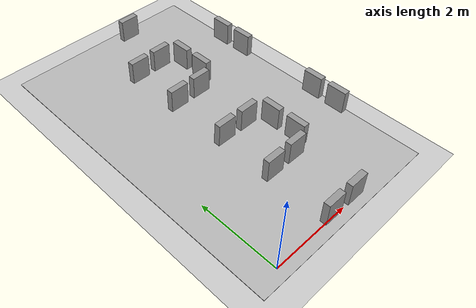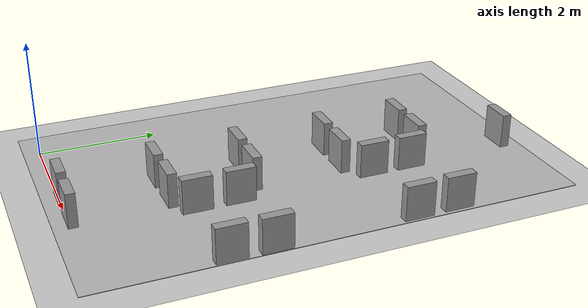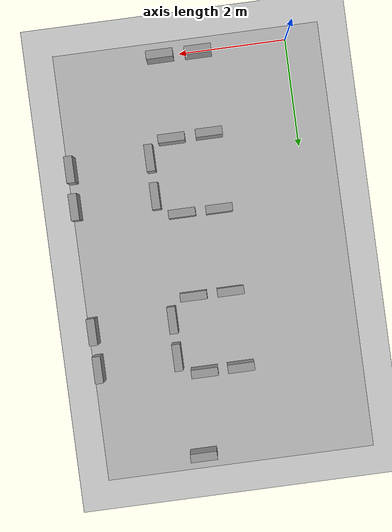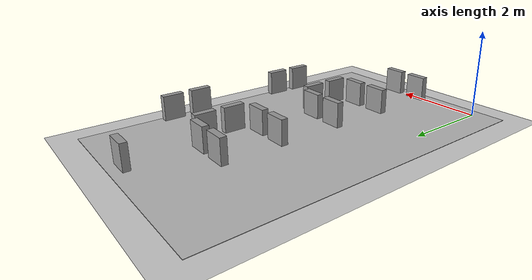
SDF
<sdf version="1.6">
 <world name="default">
  <model name="ground_plane">
   <static>1</static>
   <link name="link">
    <collision name="collision">
     <geometry><plane><normal>0 0 1</normal><size>100 100</size></plane></geometry>
     <surface>
      <contact><collide_bitmask>65535</collide_bitmask></contact>
      <friction><ode><mu>100</mu><mu2>50</mu2></ode></friction>
     </surface>
    </collision>
    <visual name="visual">
     <cast_shadows>0</cast_shadows>
     <geometry><plane><normal>0 0 1</normal><size>100 100</size></plane></geometry>
     <material>
      <script><uri>file://media/materials/scripts/gazebo.material</uri><name>Gazebo/Grey</name></script>
     </material>
    </visual>
   </link>
  </model>
  <gravity>0 0 -9.8</gravity>
  <magnetic_field>6e-06 2.3e-05 -4.2e-05</magnetic_field>
  <atmosphere type="adiabatic"/>
  <physics name="default_physics" default="0" type="ode">
   <max_step_size>0.001</max_step_size>
   <real_time_factor>1</real_time_factor>
   <real_time_update_rate>1000</real_time_update_rate>
  </physics>
  <scene><ambient>0.4 0.4 0.4 1</ambient><background>0.7 0.7 0.7 1</background><shadows>1</shadows></scene>
  <audio><device>default</device></audio>
  <spherical_coordinates>
   <surface_model>EARTH_WGS84</surface_model>
   <latitude_deg>0</latitude_deg>
   <longitude_deg>0</longitude_deg>
   <elevation>0</elevation>
   <heading_deg>0</heading_deg>
  </spherical_coordinates>
  <model name="aruco_map">
   <pose>1.85573 3.73645 0.001926 0 0 -1.5708</pose>
   <static>1</static>
   <link name="link">
    <visual name="visual"><geometry><mesh><uri>model://map/meshes/map.dae</uri></mesh></geometry></visual>
   </link>
  </model>
  <light name="user_point_light_0" type="point">
   <pose>1.25154 3.40382 1 0 -0 0</pose>
   <diffuse>1 1 1 1</diffuse>
   <specular>0.0901961 0.0901961 0.0901961 1</specular>
   <direction>0 0 -1</direction>
   <attenuation>
    <range>15</range>
    <constant>0.2</constant>
    <linear>0.01</linear>
    <quadratic>0.001</quadratic>
   </attenuation>
   <cast_shadows>0</cast_shadows>
   <direction>0 0 -1</direction>
  </light>
  <light name="user_directional_light_0" type="directional">
   <pose>0.38139 4.93156 1 0 -0 0</pose>
   <diffuse>0.5 0.5 0.5 1</diffuse>
   <specular>0.1 0.1 0.1 1</specular>
   <direction>0.1 0.1 -0.9</direction>
   <attenuation>
    <range>20</range>
    <constant>0.5</constant>
    <linear>0.01</linear>
    <quadratic>0.001</quadratic>
   </attenuation>
  </light>
  <light name="user_directional_light_1" type="directional">
   <pose>-2.51983 7.48431 1 0 -0 0</pose>
   <diffuse>0.5 0.5 0.5 1</diffuse>
   <specular>0.1 0.1 0.1 1</specular>
   <direction>0.1 0.1 -0.9</direction>
   <attenuation>
    <range>20</range>
    <constant>0.5</constant>
    <linear>0.01</linear>
    <quadratic>0.001</quadratic>
   </attenuation>
  </light>
  <light name="user_point_light_0_clone" type="point">
   <pose>2.29011 0.449297 4 0 -0 0</pose>
   <diffuse>1 1 1 1</diffuse>
   <specular>0.0901961 0.0901961 0.0901961 1</specular>
   <direction>0 0 -1</direction>
   <attenuation>
    <range>15</range>
    <constant>0.2</constant>
    <linear>0.01</linear>
    <quadratic>0.001</quadratic>
   </attenuation>
   <cast_shadows>0</cast_shadows>
  </light>
  <model name="unit_box">
   <pose>2.3397 1.58245 0.295638 1e-06 -2e-06 -7.2e-05</pose>
   <link name="link">
    <inertial>
     <mass>1</mass>
     <inertia>
      <ixx>0.166667</ixx>
      <ixy>0</ixy>
      <ixz>0</ixz>
      <iyy>0.166667</iyy>
      <iyz>0</iyz>
      <izz>0.166667</izz>
     </inertia>
    </inertial>
    <collision name="collision">
     <geometry><box><size>0.493954 0.155321 0.591273</size></box></geometry>
    </collision>
    <visual name="visual">
     <geometry><box><size>0.493954 0.155321 0.591273</size></box></geometry>
     <material>
      <script><name>Gazebo/Grey</name><uri>file://media/materials/scripts/gazebo.material</uri></script>
     </material>
    </visual>
   </link>
  </model>
  <model name="unit_box_clone">
   <pose>1.64474 1.56881 0.295638 2e-06 -2e-06 8.7e-05</pose>
   <link name="link">
    <inertial>
     <mass>1</mass>
     <inertia>
      <ixx>0.166667</ixx>
      <ixy>0</ixy>
      <ixz>0</ixz>
      <iyy>0.166667</iyy>
      <iyz>0</iyz>
      <izz>0.166667</izz>
     </inertia>
    </inertial>
    <collision name="collision">
     <geometry><box><size>0.493954 0.155321 0.591274</size></box></geometry>
    </collision>
    <visual name="visual">
     <geometry><box><size>0.493954 0.155321 0.591274</size></box></geometry>
     <material>
      <script><name>Gazebo/Grey</name><uri>file://media/materials/scripts/gazebo.material</uri></script>
     </material>
    </visual>
   </link>
  </model>
  <model name="unit_box_clone_0">
   <pose>2.35529 0.03884 0.295635 3e-06 7e-06 0.000193</pose>
   <link name="link">
    <inertial>
     <mass>1</mass>
     <inertia>
      <ixx>0.166667</ixx>
      <ixy>0</ixy>
      <ixz>0</ixz>
      <iyy>0.166667</iyy>
      <iyz>0</iyz>
      <izz>0.166667</izz>
     </inertia>
    </inertial>
    <collision name="collision">
     <geometry><box><size>0.493954 0.155321 0.591274</size></box></geometry>
    </collision>
    <visual name="visual">
     <geometry><box><size>0.493954 0.155321 0.591274</size></box></geometry>
     <material>
      <script><name>Gazebo/Grey</name><uri>file://media/materials/scripts/gazebo.material</uri></script>
     </material>
    </visual>
   </link>
  </model>
  <model name="unit_box_clone_1">
   <pose>1.64973 0.044182 0.295635 -3e-06 -7e-06 -0.000341</pose>
   <link name="link">
    <inertial>
     <mass>1</mass>
     <inertia>
      <ixx>0.166667</ixx>
      <ixy>0</ixy>
      <ixz>0</ixz>
      <iyy>0.166667</iyy>
      <iyz>0</iyz>
      <izz>0.166667</izz>
     </inertia>
    </inertial>
    <collision name="collision">
     <geometry><box><size>0.493954 0.155321 0.591274</size></box></geometry>
    </collision>
    <visual name="visual">
     <geometry><box><size>0.493954 0.155321 0.591274</size></box></geometry>
     <material>
      <script><name>Gazebo/Grey</name><uri>file://media/materials/scripts/gazebo.material</uri></script>
     </material>
    </visual>
   </link>
  </model>
  <model name="unit_box_clone_2">
   <pose>2.32764 2.97085 0.295635 -2e-06 7e-06 0.000188</pose>
   <link name="link">
    <inertial>
     <mass>1</mass>
     <inertia>
      <ixx>0.166667</ixx>
      <ixy>0</ixy>
      <ixz>0</ixz>
      <iyy>0.166667</iyy>
      <iyz>0</iyz>
      <izz>0.166667</izz>
     </inertia>
    </inertial>
    <collision name="collision">
     <geometry><box><size>0.493954 0.155321 0.591274</size></box></geometry>
    </collision>
    <visual name="visual">
     <geometry><box><size>0.493954 0.155321 0.591274</size></box></geometry>
     <material>
      <script><name>Gazebo/Grey</name><uri>file://media/materials/scripts/gazebo.material</uri></script>
     </material>
    </visual>
   </link>
  </model>
  <model name="unit_box_clone_3">
   <pose>1.64222 2.97773 0.295638 0 -2e-06 -0.000282</pose>
   <link name="link">
    <inertial>
     <mass>1</mass>
     <inertia>
      <ixx>0.166667</ixx>
      <ixy>0</ixy>
      <ixz>0</ixz>
      <iyy>0.166667</iyy>
      <iyz>0</iyz>
      <izz>0.166667</izz>
     </inertia>
    </inertial>
    <collision name="collision">
     <geometry><box><size>0.493954 0.155321 0.591274</size></box></geometry>
    </collision>
    <visual name="visual">
     <geometry><box><size>0.493954 0.155321 0.591274</size></box></geometry>
     <material>
      <script><name>Gazebo/Grey</name><uri>file://media/materials/scripts/gazebo.material</uri></script>
     </material>
    </visual>
   </link>
  </model>
  <model name="unit_box_clone_4">
   <pose>2.31734 4.50838 0.295638 -0 2e-06 -0.000314</pose>
   <link name="link">
    <inertial>
     <mass>1</mass>
     <inertia>
      <ixx>0.166667</ixx>
      <ixy>0</ixy>
      <ixz>0</ixz>
      <iyy>0.166667</iyy>
      <iyz>0</iyz>
      <izz>0.166667</izz>
     </inertia>
    </inertial>
    <collision name="collision">
     <geometry><box><size>0.493954 0.155321 0.591274</size></box></geometry>
    </collision>
    <visual name="visual">
     <geometry><box><size>0.493954 0.155321 0.591274</size></box></geometry>
     <material>
      <script><name>Gazebo/Grey</name><uri>file://media/materials/scripts/gazebo.material</uri></script>
     </material>
    </visual>
   </link>
  </model>
  <model name="unit_box_clone_5">
   <pose>1.63226 4.50813 0.295635 -2e-06 -7e-06 0.000354</pose>
   <link name="link">
    <inertial>
     <mass>1</mass>
     <inertia>
      <ixx>0.166667</ixx>
      <ixy>0</ixy>
      <ixz>0</ixz>
      <iyy>0.166667</iyy>
      <iyz>0</iyz>
      <izz>0.166667</izz>
     </inertia>
    </inertial>
    <collision name="collision">
     <geometry><box><size>0.493954 0.155321 0.591274</size></box></geometry>
    </collision>
    <visual name="visual">
     <geometry><box><size>0.493954 0.155321 0.591274</size></box></geometry>
     <material>
      <script><name>Gazebo/Grey</name><uri>file://media/materials/scripts/gazebo.material</uri></script>
     </material>
    </visual>
   </link>
  </model>
  <model name="unit_box_clone_6">
   <pose>1.62494 5.91459 0.295638 0 -2e-06 -4.7e-05</pose>
   <link name="link">
    <inertial>
     <mass>1</mass>
     <inertia>
      <ixx>0.166667</ixx>
      <ixy>0</ixy>
      <ixz>0</ixz>
      <iyy>0.166667</iyy>
      <iyz>0</iyz>
      <izz>0.166667</izz>
     </inertia>
    </inertial>
    <collision name="collision">
     <geometry><box><size>0.493954 0.155321 0.591274</size></box></geometry>
    </collision>
    <visual name="visual">
     <geometry><box><size>0.493954 0.155321 0.591274</size></box></geometry>
     <material>
      <script><name>Gazebo/Grey</name><uri>file://media/materials/scripts/gazebo.material</uri></script>
     </material>
    </visual>
   </link>
  </model>
  <model name="unit_box_clone_7">
   <pose>2.29843 5.92086 0.295635 1e-06 -7e-06 -0.000285</pose>
   <link name="link">
    <inertial>
     <mass>1</mass>
     <inertia>
      <ixx>0.166667</ixx>
      <ixy>0</ixy>
      <ixz>0</ixz>
      <iyy>0.166667</iyy>
      <iyz>0</iyz>
      <izz>0.166667</izz>
     </inertia>
    </inertial>
    <collision name="collision">
     <geometry><box><size>0.493954 0.155321 0.591274</size></box></geometry>
    </collision>
    <visual name="visual">
     <geometry><box><size>0.493954 0.155321 0.591274</size></box></geometry>
     <material>
      <script><name>Gazebo/Grey</name><uri>file://media/materials/scripts/gazebo.material</uri></script>
     </material>
    </visual>
   </link>
  </model>
  <model name="unit_box_clone_8">
   <pose>2.51446 7.43862 0.295635 -3e-06 -7e-06 -0.00017</pose>
   <link name="link">
    <inertial>
     <mass>1</mass>
     <inertia>
      <ixx>0.166667</ixx>
      <ixy>0</ixy>
      <ixz>0</ixz>
      <iyy>0.166667</iyy>
      <iyz>0</iyz>
      <izz>0.166667</izz>
     </inertia>
    </inertial>
    <collision name="collision">
     <geometry><box><size>0.493954 0.155321 0.591274</size></box></geometry>
    </collision>
    <visual name="visual">
     <geometry><box><size>0.493954 0.155321 0.591274</size></box></geometry>
     <material>
      <script><name>Gazebo/Grey</name><uri>file://media/materials/scripts/gazebo.material</uri></script>
     </material>
    </visual>
   </link>
  </model>
  <model name="unit_box_clone_9">
   <pose>4.22714 5.61561 0.295635 -3e-06 -7e-06 1.57067</pose>
   <link name="link">
    <inertial>
     <mass>1</mass>
     <inertia>
      <ixx>0.166667</ixx>
      <ixy>0</ixy>
      <ixz>0</ixz>
      <iyy>0.166667</iyy>
      <iyz>0</iyz>
      <izz>0.166667</izz>
     </inertia>
    </inertial>
    <collision name="collision">
     <geometry><box><size>0.493954 0.155321 0.591274</size></box></geometry>
    </collision>
    <visual name="visual">
     <geometry><box><size>0.493954 0.155321 0.591274</size></box></geometry>
     <material>
      <script><name>Gazebo/Grey</name><uri>file://media/materials/scripts/gazebo.material</uri></script>
     </material>
    </visual>
   </link>
  </model>
  <model name="unit_box_clone_9_clone">
   <pose>4.24206 4.9161 0.295638 0 -2e-06 1.57067</pose>
   <link name="link">
    <inertial>
     <mass>1</mass>
     <inertia>
      <ixx>0.166667</ixx>
      <ixy>0</ixy>
      <ixz>0</ixz>
      <iyy>0.166667</iyy>
      <iyz>0</iyz>
      <izz>0.166667</izz>
     </inertia>
    </inertial>
    <collision name="collision">
     <geometry><box><size>0.493954 0.155321 0.591274</size></box></geometry>
    </collision>
    <visual name="visual">
     <geometry><box><size>0.493954 0.155321 0.591274</size></box></geometry>
     <material>
      <script><name>Gazebo/Grey</name><uri>file://media/materials/scripts/gazebo.material</uri></script>
     </material>
    </visual>
   </link>
  </model>
  <model name="unit_box_clone_9_clone_0">
   <pose>4.26795 2.60869 0.295638 0 -2e-06 1.57075</pose>
   <link name="link">
    <inertial>
     <mass>1</mass>
     <inertia>
      <ixx>0.166667</ixx>
      <ixy>0</ixy>
      <ixz>0</ixz>
      <iyy>0.166667</iyy>
      <iyz>0</iyz>
      <izz>0.166667</izz>
     </inertia>
    </inertial>
    <collision name="collision">
     <geometry><box><size>0.493954 0.155321 0.591274</size></box></geometry>
    </collision>
    <visual name="visual">
     <geometry><box><size>0.493954 0.155321 0.591274</size></box></geometry>
     <material>
      <script><name>Gazebo/Grey</name><uri>file://media/materials/scripts/gazebo.material</uri></script>
     </material>
    </visual>
   </link>
  </model>
  <model name="unit_box_clone_9_clone_1">
   <pose>4.25746 1.91871 0.295635 -3e-06 -7e-06 1.57073</pose>
   <link name="link">
    <inertial>
     <mass>1</mass>
     <inertia>
      <ixx>0.166667</ixx>
      <ixy>0</ixy>
      <ixz>0</ixz>
      <iyy>0.166667</iyy>
      <iyz>0</iyz>
      <izz>0.166667</izz>
     </inertia>
    </inertial>
    <collision name="collision">
     <geometry><box><size>0.493954 0.155321 0.591274</size></box></geometry>
    </collision>
    <visual name="visual">
     <geometry><box><size>0.493954 0.155321 0.591274</size></box></geometry>
     <material>
      <script><name>Gazebo/Grey</name><uri>file://media/materials/scripts/gazebo.material</uri></script>
     </material>
    </visual>
   </link>
  </model>
  <model name="unit_box_clone_9_clone_2">
   <pose>2.75692 5.58326 0.295638 3e-06 2e-06 1.57069</pose>
   <link name="link">
    <inertial>
     <mass>1</mass>
     <inertia>
      <ixx>0.166667</ixx>
      <ixy>0</ixy>
      <ixz>0</ixz>
      <iyy>0.166667</iyy>
      <iyz>0</iyz>
      <izz>0.166667</izz>
     </inertia>
    </inertial>
    <collision name="collision">
     <geometry><box><size>0.493954 0.155321 0.591274</size></box></geometry>
    </collision>
    <visual name="visual">
     <geometry><box><size>0.493954 0.155321 0.591274</size></box></geometry>
     <material>
      <script><name>Gazebo/Grey</name><uri>file://media/materials/scripts/gazebo.material</uri></script>
     </material>
    </visual>
   </link>
  </model>
  <model name="unit_box_clone_9_clone_3">
   <pose>2.75669 4.89501 0.295635 -3e-06 -7e-06 1.57067</pose>
   <link name="link">
    <inertial>
     <mass>1</mass>
     <inertia>
      <ixx>0.166667</ixx>
      <ixy>0</ixy>
      <ixz>0</ixz>
      <iyy>0.166667</iyy>
      <iyz>0</iyz>
      <izz>0.166667</izz>
     </inertia>
    </inertial>
    <collision name="collision">
     <geometry><box><size>0.493954 0.155321 0.591274</size></box></geometry>
    </collision>
    <visual name="visual">
     <geometry><box><size>0.493954 0.155321 0.591274</size></box></geometry>
     <material>
      <script><name>Gazebo/Grey</name><uri>file://media/materials/scripts/gazebo.material</uri></script>
     </material>
    </visual>
   </link>
  </model>
  <model name="unit_box_clone_9_clone_4">
   <pose>2.77479 2.60045 0.295638 -0 3e-06 1.57065</pose>
   <link name="link">
    <inertial>
     <mass>1</mass>
     <inertia>
      <ixx>0.166667</ixx>
      <ixy>0</ixy>
      <ixz>0</ixz>
      <iyy>0.166667</iyy>
      <iyz>0</iyz>
      <izz>0.166667</izz>
     </inertia>
    </inertial>
    <collision name="collision">
     <geometry><box><size>0.493954 0.155321 0.591274</size></box></geometry>
    </collision>
    <visual name="visual">
     <geometry><box><size>0.493954 0.155321 0.591274</size></box></geometry>
     <material>
      <script><name>Gazebo/Grey</name><uri>file://media/materials/scripts/gazebo.material</uri></script>
     </material>
    </visual>
   </link>
  </model>
  <model name="unit_box_clone_9_clone_5">
   <pose>2.78068 1.89712 0.295635 2e-06 -7e-06 1.57067</pose>
   <link name="link">
    <inertial>
     <mass>1</mass>
     <inertia>
      <ixx>0.166667</ixx>
      <ixy>0</ixy>
      <ixz>0</ixz>
      <iyy>0.166667</iyy>
      <iyz>0</iyz>
      <izz>0.166667</izz>
     </inertia>
    </inertial>
    <collision name="collision">
     <geometry><box><size>0.493954 0.155321 0.591274</size></box></geometry>
    </collision>
    <visual name="visual">
     <geometry><box><size>0.493954 0.155321 0.591274</size></box></geometry>
     <material>
      <script><name>Gazebo/Grey</name><uri>file://media/materials/scripts/gazebo.material</uri></script>
     </material>
    </visual>
   </link>
  </model>
 </world>
</sdf>
